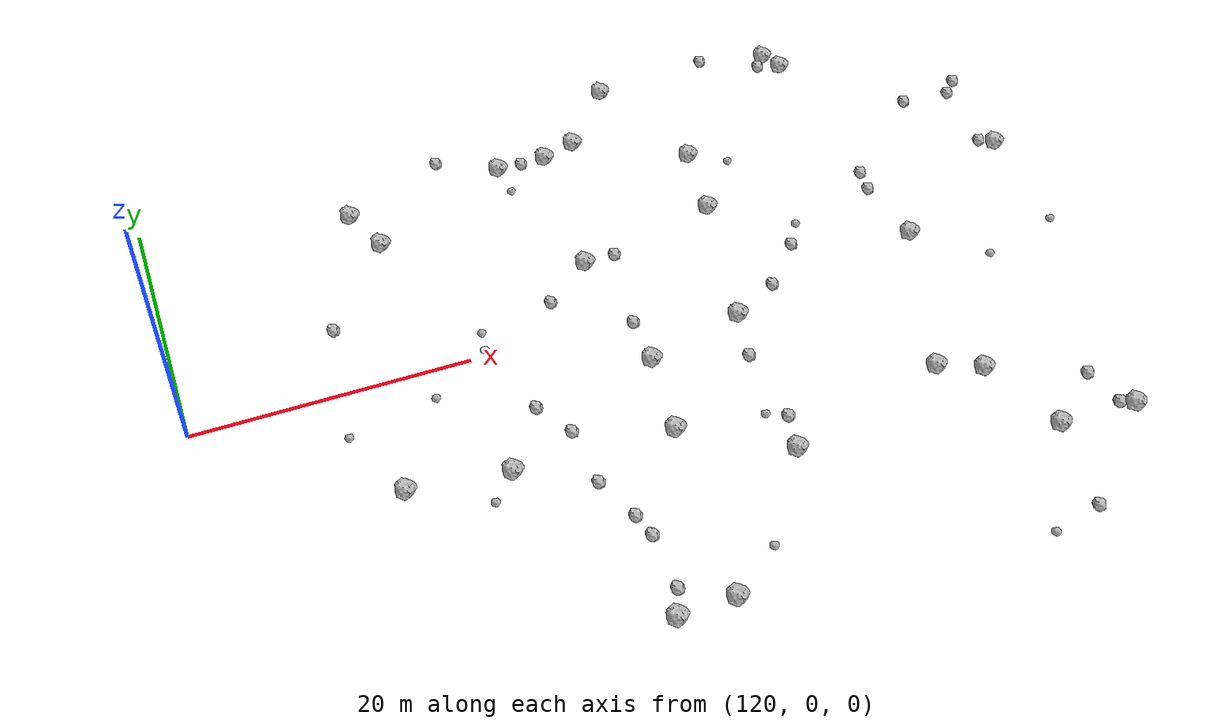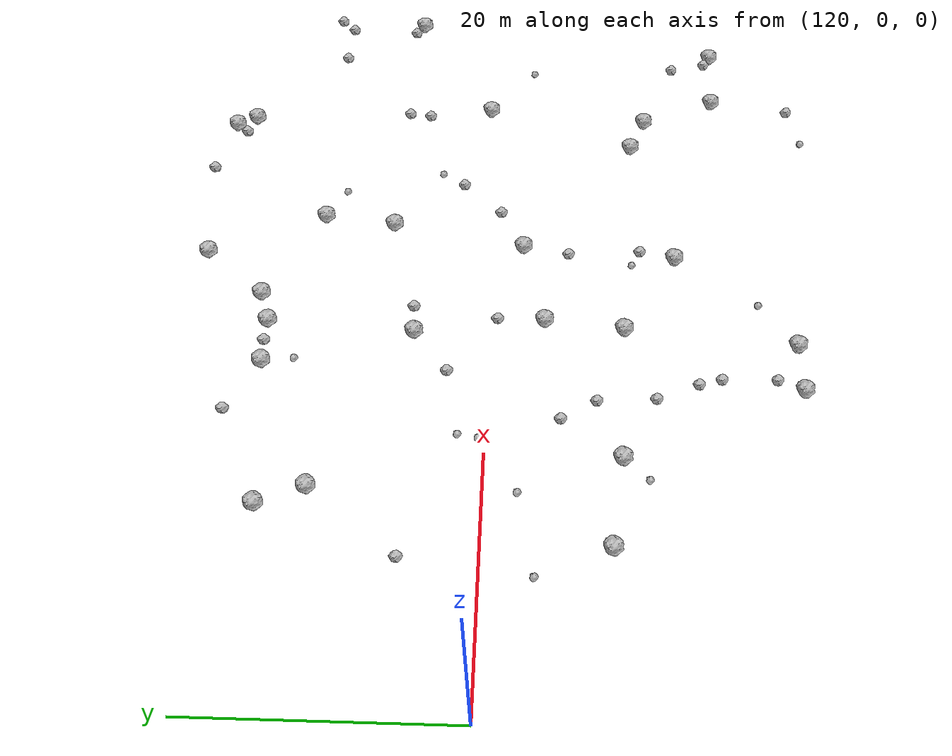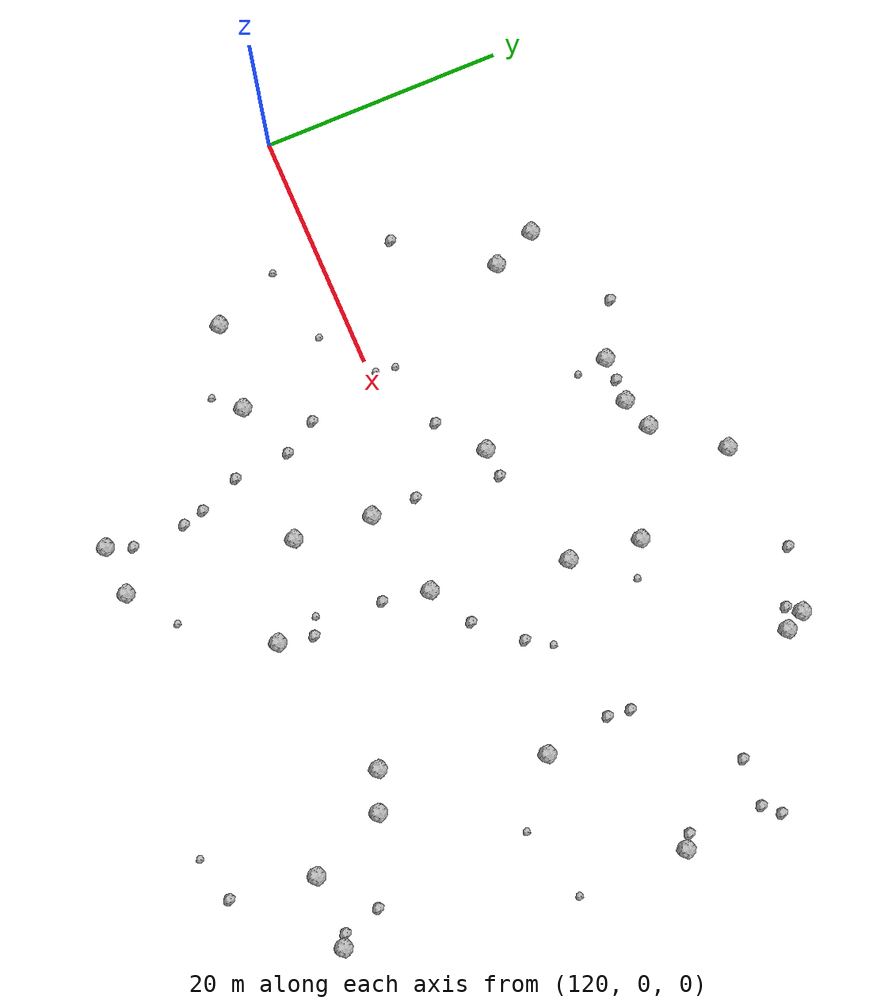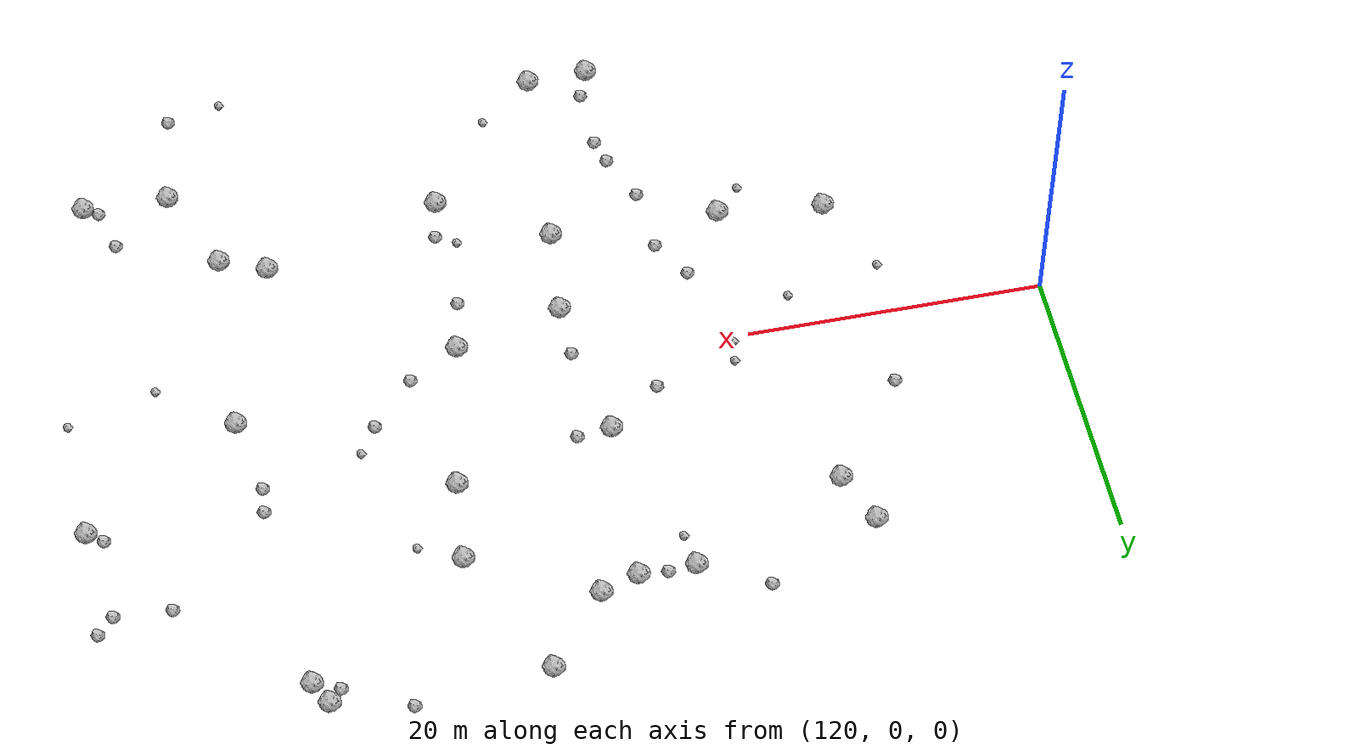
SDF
<sdf version="1.6">
 <world name="default">
  <include><uri>model://sun</uri></include>
  <model name="rock1_4_2">
   <include><uri>model://rock1</uri><pose>172.2611967346343 23.341213953277922 0.5 0 0 0</pose></include>
  </model>
  <model name="rock1_4_3">
   <include><uri>model://rock1</uri><pose>139.85737952413976 -10.377082084992946 0.5 0 0 0</pose></include>
  </model>
  <model name="rock1_4_4">
   <include><uri>model://rock1</uri><pose>151.32392434888075 17.733171490550788 0.5 0 0 0</pose></include>
  </model>
  <model name="rock1_4_5">
   <include><uri>model://rock1</uri><pose>151.2870667955719 -10.722093633345796 0.5 0 0 0</pose></include>
  </model>
  <model name="rock1_4_6">
   <include><uri>model://rock1</uri><pose>181.84138232773572 -19.31952454790302 0.5 0 0 0</pose></include>
  </model>
  <model name="rock1_4_7">
   <include><uri>model://rock1</uri><pose>150.60941731997949 5.977387152318741 0.5 0 0 0</pose></include>
  </model>
  <model name="rock1_4_8">
   <include><uri>model://rock1</uri><pose>153.92803212613174 18.58425143218213 0.5 0 0 0</pose></include>
  </model>
  <model name="rock1_4_9">
   <include><uri>model://rock1</uri><pose>162.02933756985226 14.219915981010615 0.5 0 0 0</pose></include>
  </model>
  <model name="rock1_4_10">
   <include><uri>model://rock1</uri><pose>170.48495107939846 -11.69377827653146 0.5 0 0 0</pose></include>
  </model>
  <model name="rock1_4_11">
   <include><uri>model://rock1</uri><pose>132.7358370537115 -9.518777125552965 0.5 0 0 0</pose></include>
  </model>
  <model name="rock1_4_12">
   <include><uri>model://rock1</uri><pose>176.09945450305267 -19.137380000784496 0.5 0 0 0</pose></include>
  </model>
  <model name="rock1_4_13">
   <include><uri>model://rock1</uri><pose>161.32457458876917 8.370166301987005 0.5 0 0 0</pose></include>
  </model>
  <model name="rock1_4_14">
   <include><uri>model://rock1</uri><pose>158.39316133407547 -15.010752416554102 0.5 0 0 0</pose></include>
  </model>
  <model name="rock1_4_15">
   <include><uri>model://rock1</uri><pose>185.37967992203298 7.434713750958608 0.5 0 0 0</pose></include>
  </model>
  <model name="rock1_4_16">
   <include><uri>model://rock1</uri><pose>146.05518197942936 -24.50542811441772 0.5 0 0 0</pose></include>
  </model>
  <model name="rock1_4_17">
   <include><uri>model://rock1</uri><pose>150.1324184056928 -24.38381348323425 0.5 0 0 0</pose></include>
  </model>
  <model name="rock1_4_18">
   <include><uri>model://rock1</uri><pose>158.0362830040211 23.598796350050705 0.5 0 0 0</pose></include>
  </model>
  <model name="rock1_4_19">
   <include><uri>model://rock1</uri><pose>159.2762602590723 -2.5515741577891653 0.5 0 0 0</pose></include>
  </model>
  <model name="rock1_4_20">
   <include><uri>model://rock1</uri><pose>136.87889395955497 12.905409185507864 0.5 0 0 0</pose></include>
  </model>
  <model name="rock1_4_21">
   <include><uri>model://rock1</uri><pose>173.09975529100274 21.703252320512462 0.5 0 0 0</pose></include>
  </model>
  <model name="rock1_4_22">
   <include><uri>model://rock1</uri><pose>174.5819723215601 0.6764272055984897 0.5 0 0 0</pose></include>
  </model>
  <model name="rock1_4_23">
   <include><uri>model://rock1</uri><pose>135.41688623063598 16.547192216298825 0.5 0 0 0</pose></include>
  </model>
  <model name="rock1_4_24">
   <include><uri>model://rock1</uri><pose>151.96331884345906 -4.394237709164706 0.5 0 0 0</pose></include>
  </model>
  <model name="rock1_4_25">
   <include><uri>model://rock1</uri><pose>147.5302010631827 17.722940759914344 0.5 0 0 0</pose></include>
  </model>
  <model name="rock1_4_26">
   <include><uri>model://rock1</uri><pose>173.553633400251 -12.979963809589027 0.5 0 0 0</pose></include>
  </model>
  <model name="rock2_4_0">
   <include><uri>model://rock2</uri><pose>143.11804679123787 20.090720947591734 0.3 0 0 0</pose></include>
  </model>
  <model name="rock2_4_1">
   <include><uri>model://rock2</uri><pose>149.39260731121487 17.81098749651256 0.3 0 0 0</pose></include>
  </model>
  <model name="rock2_4_2">
   <include><uri>model://rock2</uri><pose>180.11068109252 -15.775269839753896 0.3 0 0 0</pose></include>
  </model>
  <model name="rock2_4_3">
   <include><uri>model://rock2</uri><pose>184.33940826622052 8.17270295307334 0.3 0 0 0</pose></include>
  </model>
  <model name="rock2_4_4">
   <include><uri>model://rock2</uri><pose>171.3825216536132 22.37946510983256 0.3 0 0 0</pose></include>
  </model>
  <model name="rock2_4_5">
   <include><uri>model://rock2</uri><pose>162.76528224553 -0.581517741016949 0.3 0 0 0</pose></include>
  </model>
  <model name="rock2_4_6">
   <include><uri>model://rock2</uri><pose>173.90710081614287 7.972359480625052 0.3 0 0 0</pose></include>
  </model>
  <model name="rock2_4_7">
   <include><uri>model://rock2</uri><pose>146.96460602704815 3.180045366013232 0.3 0 0 0</pose></include>
  </model>
  <model name="rock2_4_8">
   <include><uri>model://rock2</uri><pose>180.81300100321806 14.34213801117751 0.3 0 0 0</pose></include>
  </model>
  <model name="rock2_4_9">
   <include><uri>model://rock2</uri><pose>158.927325042005 -12.19457210443592 0.3 0 0 0</pose></include>
  </model>
  <model name="rock2_4_10">
   <include><uri>model://rock2</uri><pose>165.7213813723575 2.6864105635887157 0.3 0 0 0</pose></include>
  </model>
  <model name="rock2_4_11">
   <include><uri>model://rock2</uri><pose>184.5994760019414 14.10461901515582 0.3 0 0 0</pose></include>
  </model>
  <model name="rock2_4_12">
   <include><uri>model://rock2</uri><pose>144.5823346286744 -8.482855552445322 0.3 0 0 0</pose></include>
  </model>
  <model name="rock2_4_13">
   <include><uri>model://rock2</uri><pose>175.04775579380043 -25.871329451551116 0.3 0 0 0</pose></include>
  </model>
  <model name="rock2_4_14">
   <include><uri>model://rock2</uri><pose>158.51800879283556 -6.291950730654328 0.3 0 0 0</pose></include>
  </model>
  <model name="rock2_4_15">
   <include><uri>model://rock2</uri><pose>152.92588874156857 6.144905154481016 0.3 0 0 0</pose></include>
  </model>
  <model name="rock2_4_16">
   <include><uri>model://rock2</uri><pose>173.6896161058696 6.128829391952102 0.3 0 0 0</pose></include>
  </model>
  <model name="rock2_4_17">
   <include><uri>model://rock2</uri><pose>185.73067671419278 15.294666986904637 0.3 0 0 0</pose></include>
  </model>
  <model name="rock2_4_18">
   <include><uri>model://rock2</uri><pose>144.87630214701392 -13.078246820656997 0.3 0 0 0</pose></include>
  </model>
  <model name="rock2_4_19">
   <include><uri>model://rock2</uri><pose>131.51747812609378 5.8779796380944305 0.3 0 0 0</pose></include>
  </model>
  <model name="rock2_4_20">
   <include><uri>model://rock2</uri><pose>146.8107740346254 -22.494499550106603 0.3 0 0 0</pose></include>
  </model>
  <model name="rock2_4_21">
   <include><uri>model://rock2</uri><pose>151.9242437063171 -0.6323427668642942 0.3 0 0 0</pose></include>
  </model>
  <model name="rock2_4_22">
   <include><uri>model://rock2</uri><pose>167.0947138498818 24.59365333281749 0.3 0 0 0</pose></include>
  </model>
  <model name="rock2_4_23">
   <include><uri>model://rock2</uri><pose>180.86152312318737 -18.78017036343074 0.3 0 0 0</pose></include>
  </model>
  <model name="rock2_4_24">
   <include><uri>model://rock2</uri><pose>146.733520216317 -18.192952349520873 0.3 0 0 0</pose></include>
  </model>
  <model name="rock2_4_25">
   <include><uri>model://rock2</uri><pose>146.24911326157587 -16.408252972969503 0.3 0 0 0</pose></include>
  </model>
  <model name="rock2_4_26">
   <include><uri>model://rock2</uri><pose>142.9475238469504 -5.719517061345421 0.3 0 0 0</pose></include>
  </model>
  <model name="rock3_4_0">
   <include><uri>model://rock3</uri><pose>136.74118579920125 -2.5883371690722825 0.2 0 0 0</pose></include>
  </model>
  <model name="rock3_4_1">
   <include><uri>model://rock3</uri><pose>157.54315296806845 -11.529227139424552 0.2 0 0 0</pose></include>
  </model>
  <model name="rock3_4_2">
   <include><uri>model://rock3</uri><pose>164.72378256700443 12.696847770633894 0.2 0 0 0</pose></include>
  </model>
  <model name="rock3_4_3">
   <include><uri>model://rock3</uri><pose>153.82141696489174 -21.614162600589744 0.2 0 0 0</pose></include>
  </model>
  <model name="rock3_4_4">
   <include><uri>model://rock3</uri><pose>179.2897868099771 -3.1661038655447022 0.2 0 0 0</pose></include>
  </model>
  <model name="rock3_4_5">
   <include><uri>model://rock3</uri><pose>130.27714237644688 -3.9345976981205446 0.2 0 0 0</pose></include>
  </model>
  <model name="rock3_4_6">
   <include><uri>model://rock3</uri><pose>171.35352996016027 -26.80902015640261 0.2 0 0 0</pose></include>
  </model>
  <model name="rock3_4_7">
   <include><uri>model://rock3</uri><pose>166.92519092961314 4.558984718215179 0.2 0 0 0</pose></include>
  </model>
  <model name="rock3_4_8">
   <include><uri>model://rock3</uri><pose>185.31800501406047 -1.4500238388601652 0.2 0 0 0</pose></include>
  </model>
  <model name="rock3_4_9">
   <include><uri>model://rock3</uri><pose>141.41824380059367 2.04665022522358 0.2 0 0 0</pose></include>
  </model>
  <model name="rock3_4_10">
   <include><uri>model://rock3</uri><pose>147.7740807104822 15.19871449805791 0.2 0 0 0</pose></include>
  </model>
  <model name="rock3_4_11">
   <include><uri>model://rock3</uri><pose>141.14949747956055 0.4633392377653749 0.2 0 0 0</pose></include>
  </model>
  <model name="rock3_4_12">
   <include><uri>model://rock3</uri><pose>138.0096987074156 -12.356661764766962 0.2 0 0 0</pose></include>
  </model>
 </world>
</sdf>
